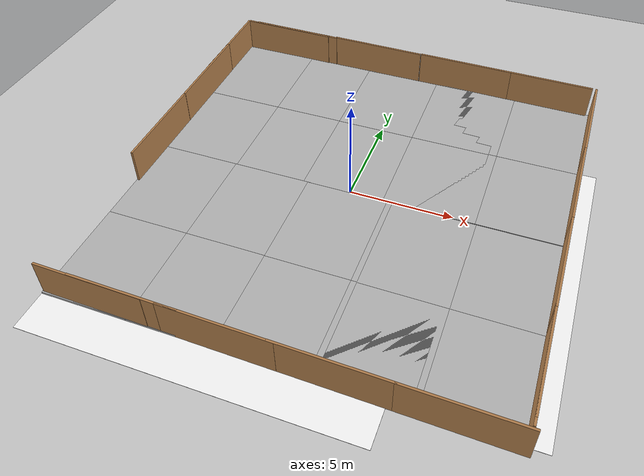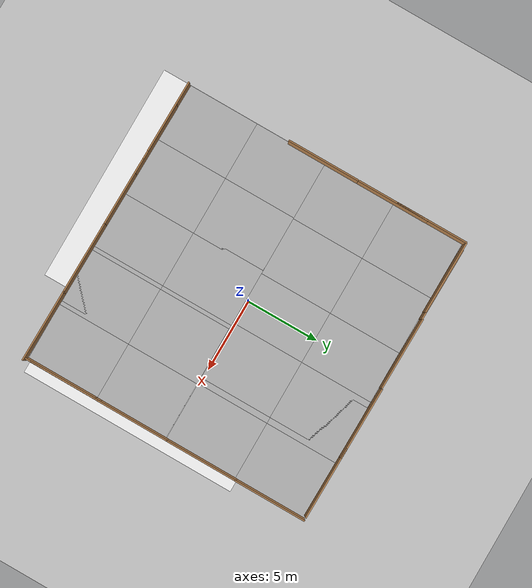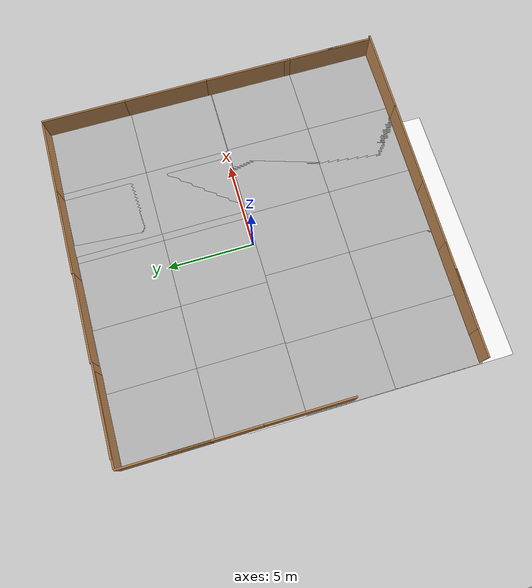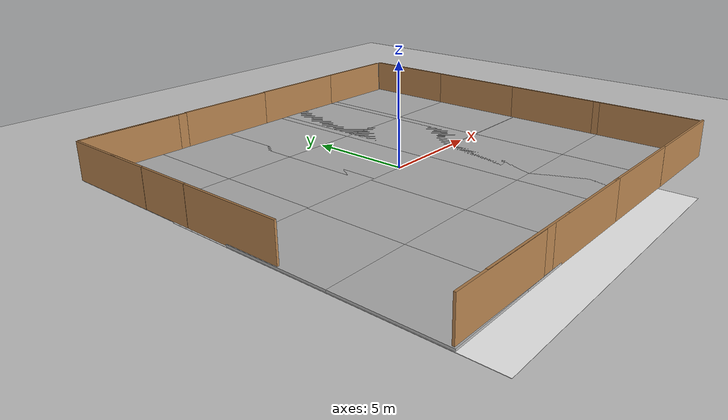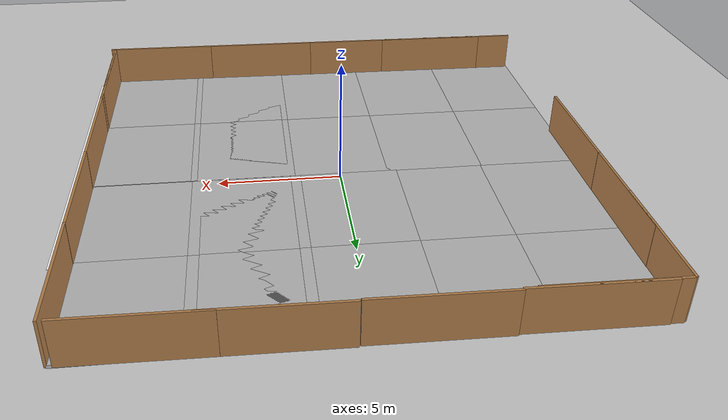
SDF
<sdf version="1.7">
 <world name="default">
  <light name="sun" type="directional">
   <pose>0 0 10 0 -0 0</pose>
   <diffuse>0.8 0.8 0.8 1</diffuse>
   <specular>0.1 0.1 0.1 1</specular>
   <attenuation>
    <range>1000</range>
    <constant>0.9</constant>
    <linear>0.01</linear>
    <quadratic>0.001</quadratic>
   </attenuation>
   <direction>-0.5 0.5 -1</direction>
   <spot><inner_angle>0</inner_angle><outer_angle>0</outer_angle><falloff>0</falloff></spot>
  </light>
  <model name="ground_plane">
   <static>1</static>
   <link name="link">
    <collision name="collision">
     <geometry><plane><normal>0 0 1</normal><size>100 100</size></plane></geometry>
     <surface><friction><ode><mu>100</mu><mu2>50</mu2></ode></friction></surface>
    </collision>
    <visual name="visual">
     <cast_shadows>0</cast_shadows>
     <geometry><plane><normal>0 0 1</normal><size>100 100</size></plane></geometry>
     <material>
      <script><uri>file://media/materials/scripts/gazebo.material</uri><name>Gazebo/Grey</name></script>
     </material>
    </visual>
   </link>
  </model>
  <gravity>0 0 -9.8</gravity>
  <magnetic_field>6e-06 2.3e-05 -4.2e-05</magnetic_field>
  <atmosphere type="adiabatic"/>
  <physics name="default_physics" default="0" type="ode">
   <max_step_size>0.001</max_step_size>
   <real_time_factor>1</real_time_factor>
   <real_time_update_rate>1000</real_time_update_rate>
  </physics>
  <scene><ambient>0.4 0.4 0.4 1</ambient><background>0.7 0.7 0.7 1</background><shadows>1</shadows></scene>
  <spherical_coordinates>
   <surface_model>EARTH_WGS84</surface_model>
   <latitude_deg>0</latitude_deg>
   <longitude_deg>0</longitude_deg>
   <elevation>0</elevation>
   <heading_deg>0</heading_deg>
  </spherical_coordinates>
  <model name="mud_box">
   <static>1</static>
   <link name="link">
    <collision name="collision"><geometry><box><size>8 10 0.2</size></box></geometry></collision>
    <visual name="visual_1">
     <pose>-2 2.5 0 0 -0 0</pose>
     <cast_shadows>0</cast_shadows>
     <geometry><box><size>4 5 0.2</size></box></geometry>
     <material>
      <script>
       <uri>model://mud_box/materials/scripts</uri>
       <uri>model://mud_box/materials/textures</uri>
       <name>vrc/mud</name>
      </script>
     </material>
    </visual>
    <visual name="visual_2">
     <pose>2 2.5 0 0 -0 0</pose>
     <cast_shadows>0</cast_shadows>
     <geometry><box><size>4 5 0.2</size></box></geometry>
     <material>
      <script>
       <uri>model://mud_box/materials/scripts</uri>
       <uri>model://mud_box/materials/textures</uri>
       <name>vrc/mud</name>
      </script>
     </material>
    </visual>
    <visual name="visual_3">
     <pose>2 -2.5 0 0 -0 0</pose>
     <cast_shadows>0</cast_shadows>
     <geometry><box><size>4 5 0.2</size></box></geometry>
     <material>
      <script>
       <uri>model://mud_box/materials/scripts</uri>
       <uri>model://mud_box/materials/textures</uri>
       <name>vrc/mud</name>
      </script>
     </material>
    </visual>
    <visual name="visual_4">
     <pose>-2 -2.5 0 0 -0 0</pose>
     <cast_shadows>0</cast_shadows>
     <geometry><box><size>4 5 0.2</size></box></geometry>
     <material>
      <script>
       <uri>model://mud_box/materials/scripts</uri>
       <uri>model://mud_box/materials/textures</uri>
       <name>vrc/mud</name>
      </script>
     </material>
    </visual>
   </link>
   <pose>-5.98326 -5.12714 0 0 -0 0</pose>
  </model>
  <model name="mud_box_0">
   <static>1</static>
   <link name="link">
    <collision name="collision"><geometry><box><size>8 10 0.2</size></box></geometry></collision>
    <visual name="visual_1">
     <pose>-2 2.5 0 0 -0 0</pose>
     <cast_shadows>0</cast_shadows>
     <geometry><box><size>4 5 0.2</size></box></geometry>
     <material>
      <script>
       <uri>model://mud_box/materials/scripts</uri>
       <uri>model://mud_box/materials/textures</uri>
       <name>vrc/mud</name>
      </script>
     </material>
    </visual>
    <visual name="visual_2">
     <pose>2 2.5 0 0 -0 0</pose>
     <cast_shadows>0</cast_shadows>
     <geometry><box><size>4 5 0.2</size></box></geometry>
     <material>
      <script>
       <uri>model://mud_box/materials/scripts</uri>
       <uri>model://mud_box/materials/textures</uri>
       <name>vrc/mud</name>
      </script>
     </material>
    </visual>
    <visual name="visual_3">
     <pose>2 -2.5 0 0 -0 0</pose>
     <cast_shadows>0</cast_shadows>
     <geometry><box><size>4 5 0.2</size></box></geometry>
     <material>
      <script>
       <uri>model://mud_box/materials/scripts</uri>
       <uri>model://mud_box/materials/textures</uri>
       <name>vrc/mud</name>
      </script>
     </material>
    </visual>
    <visual name="visual_4">
     <pose>-2 -2.5 0 0 -0 0</pose>
     <cast_shadows>0</cast_shadows>
     <geometry><box><size>4 5 0.2</size></box></geometry>
     <material>
      <script>
       <uri>model://mud_box/materials/scripts</uri>
       <uri>model://mud_box/materials/textures</uri>
       <name>vrc/mud</name>
      </script>
     </material>
    </visual>
   </link>
   <pose>1.64664 4.84854 0 0 -0 0</pose>
  </model>
  <model name="mud_box_2">
   <static>1</static>
   <link name="link">
    <collision name="collision"><geometry><box><size>8 10 0.2</size></box></geometry></collision>
    <visual name="visual_1">
     <pose>-2 2.5 0 0 -0 0</pose>
     <cast_shadows>0</cast_shadows>
     <geometry><box><size>4 5 0.2</size></box></geometry>
     <material>
      <script>
       <uri>model://mud_box/materials/scripts</uri>
       <uri>model://mud_box/materials/textures</uri>
       <name>vrc/mud</name>
      </script>
     </material>
    </visual>
    <visual name="visual_2">
     <pose>2 2.5 0 0 -0 0</pose>
     <cast_shadows>0</cast_shadows>
     <geometry><box><size>4 5 0.2</size></box></geometry>
     <material>
      <script>
       <uri>model://mud_box/materials/scripts</uri>
       <uri>model://mud_box/materials/textures</uri>
       <name>vrc/mud</name>
      </script>
     </material>
    </visual>
    <visual name="visual_3">
     <pose>2 -2.5 0 0 -0 0</pose>
     <cast_shadows>0</cast_shadows>
     <geometry><box><size>4 5 0.2</size></box></geometry>
     <material>
      <script>
       <uri>model://mud_box/materials/scripts</uri>
       <uri>model://mud_box/materials/textures</uri>
       <name>vrc/mud</name>
      </script>
     </material>
    </visual>
    <visual name="visual_4">
     <pose>-2 -2.5 0 0 -0 0</pose>
     <cast_shadows>0</cast_shadows>
     <geometry><box><size>4 5 0.2</size></box></geometry>
     <material>
      <script>
       <uri>model://mud_box/materials/scripts</uri>
       <uri>model://mud_box/materials/textures</uri>
       <name>vrc/mud</name>
      </script>
     </material>
    </visual>
   </link>
   <pose>1.85975 -5.14192 0 0 -0 0</pose>
  </model>
  <model name="mud_box_0_clone">
   <static>1</static>
   <link name="link">
    <collision name="collision"><geometry><box><size>8 10 0.2</size></box></geometry></collision>
    <visual name="visual_1">
     <pose>-2 2.5 0 0 -0 0</pose>
     <cast_shadows>0</cast_shadows>
     <geometry><box><size>4 5 0.2</size></box></geometry>
     <material>
      <script>
       <uri>model://mud_box/materials/scripts</uri>
       <uri>model://mud_box/materials/textures</uri>
       <name>vrc/mud</name>
      </script>
     </material>
    </visual>
    <visual name="visual_2">
     <pose>2 2.5 0 0 -0 0</pose>
     <cast_shadows>0</cast_shadows>
     <geometry><box><size>4 5 0.2</size></box></geometry>
     <material>
      <script>
       <uri>model://mud_box/materials/scripts</uri>
       <uri>model://mud_box/materials/textures</uri>
       <name>vrc/mud</name>
      </script>
     </material>
    </visual>
    <visual name="visual_3">
     <pose>2 -2.5 0 0 -0 0</pose>
     <cast_shadows>0</cast_shadows>
     <geometry><box><size>4 5 0.2</size></box></geometry>
     <material>
      <script>
       <uri>model://mud_box/materials/scripts</uri>
       <uri>model://mud_box/materials/textures</uri>
       <name>vrc/mud</name>
      </script>
     </material>
    </visual>
    <visual name="visual_4">
     <pose>-2 -2.5 0 0 -0 0</pose>
     <cast_shadows>0</cast_shadows>
     <geometry><box><size>4 5 0.2</size></box></geometry>
     <material>
      <script>
       <uri>model://mud_box/materials/scripts</uri>
       <uri>model://mud_box/materials/textures</uri>
       <name>vrc/mud</name>
      </script>
     </material>
    </visual>
   </link>
   <pose>6.12315 -5.16667 0 0 -0 0</pose>
  </model>
  <model name="mud_box_0_clone_clone_0">
   <static>1</static>
   <link name="link">
    <collision name="collision"><geometry><box><size>8 10 0.2</size></box></geometry></collision>
    <visual name="visual_1">
     <pose>-2 2.5 0 0 -0 0</pose>
     <cast_shadows>0</cast_shadows>
     <geometry><box><size>4 5 0.2</size></box></geometry>
     <material>
      <script>
       <uri>model://mud_box/materials/scripts</uri>
       <uri>model://mud_box/materials/textures</uri>
       <name>vrc/mud</name>
      </script>
     </material>
    </visual>
    <visual name="visual_2">
     <pose>2 2.5 0 0 -0 0</pose>
     <cast_shadows>0</cast_shadows>
     <geometry><box><size>4 5 0.2</size></box></geometry>
     <material>
      <script>
       <uri>model://mud_box/materials/scripts</uri>
       <uri>model://mud_box/materials/textures</uri>
       <name>vrc/mud</name>
      </script>
     </material>
    </visual>
    <visual name="visual_3">
     <pose>2 -2.5 0 0 -0 0</pose>
     <cast_shadows>0</cast_shadows>
     <geometry><box><size>4 5 0.2</size></box></geometry>
     <material>
      <script>
       <uri>model://mud_box/materials/scripts</uri>
       <uri>model://mud_box/materials/textures</uri>
       <name>vrc/mud</name>
      </script>
     </material>
    </visual>
    <visual name="visual_4">
     <pose>-2 -2.5 0 0 -0 0</pose>
     <cast_shadows>0</cast_shadows>
     <geometry><box><size>4 5 0.2</size></box></geometry>
     <material>
      <script>
       <uri>model://mud_box/materials/scripts</uri>
       <uri>model://mud_box/materials/textures</uri>
       <name>vrc/mud</name>
      </script>
     </material>
    </visual>
   </link>
   <pose>6.05664 4.87182 0 0 -0 0</pose>
  </model>
  <model name="mud_box_0_clone_clone_2">
   <static>1</static>
   <link name="link">
    <collision name="collision"><geometry><box><size>8 10 0.2</size></box></geometry></collision>
    <visual name="visual_1">
     <pose>-2 2.5 0 0 -0 0</pose>
     <cast_shadows>0</cast_shadows>
     <geometry><box><size>4 5 0.2</size></box></geometry>
     <material>
      <script>
       <uri>model://mud_box/materials/scripts</uri>
       <uri>model://mud_box/materials/textures</uri>
       <name>vrc/mud</name>
      </script>
     </material>
    </visual>
    <visual name="visual_2">
     <pose>2 2.5 0 0 -0 0</pose>
     <cast_shadows>0</cast_shadows>
     <geometry><box><size>4 5 0.2</size></box></geometry>
     <material>
      <script>
       <uri>model://mud_box/materials/scripts</uri>
       <uri>model://mud_box/materials/textures</uri>
       <name>vrc/mud</name>
      </script>
     </material>
    </visual>
    <visual name="visual_3">
     <pose>2 -2.5 0 0 -0 0</pose>
     <cast_shadows>0</cast_shadows>
     <geometry><box><size>4 5 0.2</size></box></geometry>
     <material>
      <script>
       <uri>model://mud_box/materials/scripts</uri>
       <uri>model://mud_box/materials/textures</uri>
       <name>vrc/mud</name>
      </script>
     </material>
    </visual>
    <visual name="visual_4">
     <pose>-2 -2.5 0 0 -0 0</pose>
     <cast_shadows>0</cast_shadows>
     <geometry><box><size>4 5 0.2</size></box></geometry>
     <material>
      <script>
       <uri>model://mud_box/materials/scripts</uri>
       <uri>model://mud_box/materials/textures</uri>
       <name>vrc/mud</name>
      </script>
     </material>
    </visual>
   </link>
   <pose>-5.93085 4.86118 0 0 -0 0</pose>
  </model>
  <model name="fence">
   <static>1</static>
   <link name="link">
    <pose>0 0 0.915 0 -0 0</pose>
    <collision name="collision"><geometry><box><size>0.1 5 1.83</size></box></geometry></collision>
    <visual name="visual">
     <cast_shadows>0</cast_shadows>
     <geometry><box><size>0.1 5 1.83</size></box></geometry>
     <material>
      <script>
       <uri>https://fuel.gazebosim.org/1.0/athackst/models/fence/2/files/materials/scripts</uri>
       <uri>https://fuel.gazebosim.org/1.0/athackst/models/fence/2/files/materials/textures</uri>
       <name>Fence/WoodBoarding</name>
      </script>
     </material>
    </visual>
   </link>
   <pose>-9.89372 -0.30785 0 0 -0 0</pose>
  </model>
  <model name="fence_clone">
   <static>1</static>
   <link name="link">
    <pose>0 0 0.915 0 -0 0</pose>
    <collision name="collision"><geometry><box><size>0.1 5 1.83</size></box></geometry></collision>
    <visual name="visual">
     <cast_shadows>0</cast_shadows>
     <geometry><box><size>0.1 5 1.83</size></box></geometry>
     <material>
      <script>
       <uri>https://fuel.gazebosim.org/1.0/athackst/models/fence/2/files/materials/scripts</uri>
       <uri>https://fuel.gazebosim.org/1.0/athackst/models/fence/2/files/materials/textures</uri>
       <name>Fence/WoodBoarding</name>
      </script>
     </material>
    </visual>
   </link>
   <pose>-9.89568 4.70582 0 0 -0 0</pose>
  </model>
  <model name="fence_clone_0">
   <static>1</static>
   <link name="link">
    <pose>0 0 0.915 0 -0 0</pose>
    <collision name="collision"><geometry><box><size>0.1 5 1.83</size></box></geometry></collision>
    <visual name="visual">
     <cast_shadows>0</cast_shadows>
     <geometry><box><size>0.1 5 1.83</size></box></geometry>
     <material>
      <script>
       <uri>https://fuel.gazebosim.org/1.0/athackst/models/fence/2/files/materials/scripts</uri>
       <uri>https://fuel.gazebosim.org/1.0/athackst/models/fence/2/files/materials/textures</uri>
       <name>Fence/WoodBoarding</name>
      </script>
     </material>
    </visual>
   </link>
   <pose>-9.9057 7.46242 0 0 -0 0</pose>
  </model>
  <model name="fence_clone_1">
   <static>1</static>
   <link name="link">
    <pose>0 0 0.915 0 -0 0</pose>
    <collision name="collision"><geometry><box><size>0.1 5 1.83</size></box></geometry></collision>
    <visual name="visual">
     <cast_shadows>0</cast_shadows>
     <geometry><box><size>0.1 5 1.83</size></box></geometry>
     <material>
      <script>
       <uri>https://fuel.gazebosim.org/1.0/athackst/models/fence/2/files/materials/scripts</uri>
       <uri>https://fuel.gazebosim.org/1.0/athackst/models/fence/2/files/materials/textures</uri>
       <name>Fence/WoodBoarding</name>
      </script>
     </material>
    </visual>
   </link>
   <pose>10.0636 7.36821 0 0 -0 0</pose>
  </model>
  <model name="fence_clone_2">
   <static>1</static>
   <link name="link">
    <pose>0 0 0.915 0 -0 0</pose>
    <collision name="collision"><geometry><box><size>0.1 5 1.83</size></box></geometry></collision>
    <visual name="visual">
     <cast_shadows>0</cast_shadows>
     <geometry><box><size>0.1 5 1.83</size></box></geometry>
     <material>
      <script>
       <uri>https://fuel.gazebosim.org/1.0/athackst/models/fence/2/files/materials/scripts</uri>
       <uri>https://fuel.gazebosim.org/1.0/athackst/models/fence/2/files/materials/textures</uri>
       <name>Fence/WoodBoarding</name>
      </script>
     </material>
    </visual>
   </link>
   <pose>10.056 2.45698 0 0 -0 0</pose>
  </model>
  <model name="fence_clone_3">
   <static>1</static>
   <link name="link">
    <pose>0 0 0.915 0 -0 0</pose>
    <collision name="collision"><geometry><box><size>0.1 5 1.83</size></box></geometry></collision>
    <visual name="visual">
     <cast_shadows>0</cast_shadows>
     <geometry><box><size>0.1 5 1.83</size></box></geometry>
     <material>
      <script>
       <uri>https://fuel.gazebosim.org/1.0/athackst/models/fence/2/files/materials/scripts</uri>
       <uri>https://fuel.gazebosim.org/1.0/athackst/models/fence/2/files/materials/textures</uri>
       <name>Fence/WoodBoarding</name>
      </script>
     </material>
    </visual>
   </link>
   <pose>10.05 -2.48927 0 0 -0 0</pose>
  </model>
  <model name="fence_clone_4">
   <static>1</static>
   <link name="link">
    <pose>0 0 0.915 0 -0 0</pose>
    <collision name="collision"><geometry><box><size>0.1 5 1.83</size></box></geometry></collision>
    <visual name="visual">
     <cast_shadows>0</cast_shadows>
     <geometry><box><size>0.1 5 1.83</size></box></geometry>
     <material>
      <script>
       <uri>https://fuel.gazebosim.org/1.0/athackst/models/fence/2/files/materials/scripts</uri>
       <uri>https://fuel.gazebosim.org/1.0/athackst/models/fence/2/files/materials/textures</uri>
       <name>Fence/WoodBoarding</name>
      </script>
     </material>
    </visual>
   </link>
   <pose>10.0459 -7.31564 0 0 -0 0</pose>
  </model>
  <model name="fence_clone_5">
   <static>1</static>
   <link name="link">
    <pose>0 0 0.915 0 -0 0</pose>
    <collision name="collision"><geometry><box><size>0.1 5 1.83</size></box></geometry></collision>
    <visual name="visual">
     <cast_shadows>0</cast_shadows>
     <geometry><box><size>0.1 5 1.83</size></box></geometry>
     <material>
      <script>
       <uri>https://fuel.gazebosim.org/1.0/athackst/models/fence/2/files/materials/scripts</uri>
       <uri>https://fuel.gazebosim.org/1.0/athackst/models/fence/2/files/materials/textures</uri>
       <name>Fence/WoodBoarding</name>
      </script>
     </material>
    </visual>
   </link>
   <pose>10.04 -7.666 0 0 -0 0</pose>
  </model>
  <model name="fence_clone_6">
   <static>1</static>
   <link name="link">
    <pose>0 0 0.915 0 -0 0</pose>
    <collision name="collision"><geometry><box><size>0.1 5 1.83</size></box></geometry></collision>
    <visual name="visual">
     <cast_shadows>0</cast_shadows>
     <geometry><box><size>0.1 5 1.83</size></box></geometry>
     <material>
      <script>
       <uri>https://fuel.gazebosim.org/1.0/athackst/models/fence/2/files/materials/scripts</uri>
       <uri>https://fuel.gazebosim.org/1.0/athackst/models/fence/2/files/materials/textures</uri>
       <name>Fence/WoodBoarding</name>
      </script>
     </material>
    </visual>
   </link>
   <pose>7.74359 -10.2293 -0 0 0 -1.58413</pose>
  </model>
  <model name="fence_clone_6_clone">
   <static>1</static>
   <link name="link">
    <pose>0 0 0.915 0 -0 0</pose>
    <collision name="collision"><geometry><box><size>0.1 5 1.83</size></box></geometry></collision>
    <visual name="visual">
     <cast_shadows>0</cast_shadows>
     <geometry><box><size>0.1 5 1.83</size></box></geometry>
     <material>
      <script>
       <uri>https://fuel.gazebosim.org/1.0/athackst/models/fence/2/files/materials/scripts</uri>
       <uri>https://fuel.gazebosim.org/1.0/athackst/models/fence/2/files/materials/textures</uri>
       <name>Fence/WoodBoarding</name>
      </script>
     </material>
    </visual>
   </link>
   <pose>2.8432 -10.1621 -0 0 0 -1.58413</pose>
  </model>
  <model name="fence_clone_6_clone_0">
   <static>1</static>
   <link name="link">
    <pose>0 0 0.915 0 -0 0</pose>
    <collision name="collision"><geometry><box><size>0.1 5 1.83</size></box></geometry></collision>
    <visual name="visual">
     <cast_shadows>0</cast_shadows>
     <geometry><box><size>0.1 5 1.83</size></box></geometry>
     <material>
      <script>
       <uri>https://fuel.gazebosim.org/1.0/athackst/models/fence/2/files/materials/scripts</uri>
       <uri>https://fuel.gazebosim.org/1.0/athackst/models/fence/2/files/materials/textures</uri>
       <name>Fence/WoodBoarding</name>
      </script>
     </material>
    </visual>
   </link>
   <pose>-1.83838 -10.102 -0 0 0 -1.58413</pose>
  </model>
  <model name="fence_clone_6_clone_1">
   <static>1</static>
   <link name="link">
    <pose>0 0 0.915 0 -0 0</pose>
    <collision name="collision"><geometry><box><size>0.1 5 1.83</size></box></geometry></collision>
    <visual name="visual">
     <cast_shadows>0</cast_shadows>
     <geometry><box><size>0.1 5 1.83</size></box></geometry>
     <material>
      <script>
       <uri>https://fuel.gazebosim.org/1.0/athackst/models/fence/2/files/materials/scripts</uri>
       <uri>https://fuel.gazebosim.org/1.0/athackst/models/fence/2/files/materials/textures</uri>
       <name>Fence/WoodBoarding</name>
      </script>
     </material>
    </visual>
   </link>
   <pose>-5.84292 -10.048 -0 0 0 -1.58413</pose>
  </model>
  <model name="fence_clone_6_clone_2">
   <static>1</static>
   <link name="link">
    <pose>0 0 0.915 0 -0 0</pose>
    <collision name="collision"><geometry><box><size>0.1 5 1.83</size></box></geometry></collision>
    <visual name="visual">
     <cast_shadows>0</cast_shadows>
     <geometry><box><size>0.1 5 1.83</size></box></geometry>
     <material>
      <script>
       <uri>https://fuel.gazebosim.org/1.0/athackst/models/fence/2/files/materials/scripts</uri>
       <uri>https://fuel.gazebosim.org/1.0/athackst/models/fence/2/files/materials/textures</uri>
       <name>Fence/WoodBoarding</name>
      </script>
     </material>
    </visual>
   </link>
   <pose>-7.42735 -10.0411 -0 0 0 -1.58413</pose>
  </model>
  <model name="fence_clone_6_clone_3">
   <static>1</static>
   <link name="link">
    <pose>0 0 0.915 0 -0 0</pose>
    <collision name="collision"><geometry><box><size>0.1 5 1.83</size></box></geometry></collision>
    <visual name="visual">
     <cast_shadows>0</cast_shadows>
     <geometry><box><size>0.1 5 1.83</size></box></geometry>
     <material>
      <script>
       <uri>https://fuel.gazebosim.org/1.0/athackst/models/fence/2/files/materials/scripts</uri>
       <uri>https://fuel.gazebosim.org/1.0/athackst/models/fence/2/files/materials/textures</uri>
       <name>Fence/WoodBoarding</name>
      </script>
     </material>
    </visual>
   </link>
   <pose>7.37253 9.86478 -0 0 0 -1.58413</pose>
  </model>
  <model name="fence_clone_6_clone_4">
   <static>1</static>
   <link name="link">
    <pose>0 0 0.915 0 -0 0</pose>
    <collision name="collision"><geometry><box><size>0.1 5 1.83</size></box></geometry></collision>
    <visual name="visual">
     <cast_shadows>0</cast_shadows>
     <geometry><box><size>0.1 5 1.83</size></box></geometry>
     <material>
      <script>
       <uri>https://fuel.gazebosim.org/1.0/athackst/models/fence/2/files/materials/scripts</uri>
       <uri>https://fuel.gazebosim.org/1.0/athackst/models/fence/2/files/materials/textures</uri>
       <name>Fence/WoodBoarding</name>
      </script>
     </material>
    </visual>
   </link>
   <pose>3.0991 9.9186 -0 0 0 -1.58413</pose>
  </model>
  <model name="fence_clone_6_clone_5">
   <static>1</static>
   <link name="link">
    <pose>0 0 0.915 0 -0 0</pose>
    <collision name="collision"><geometry><box><size>0.1 5 1.83</size></box></geometry></collision>
    <visual name="visual">
     <cast_shadows>0</cast_shadows>
     <geometry><box><size>0.1 5 1.83</size></box></geometry>
     <material>
      <script>
       <uri>https://fuel.gazebosim.org/1.0/athackst/models/fence/2/files/materials/scripts</uri>
       <uri>https://fuel.gazebosim.org/1.0/athackst/models/fence/2/files/materials/textures</uri>
       <name>Fence/WoodBoarding</name>
      </script>
     </material>
    </visual>
   </link>
   <pose>-1.92904 9.94278 -0 0 0 -1.58413</pose>
  </model>
  <model name="fence_clone_6_clone_6">
   <static>1</static>
   <link name="link">
    <pose>0 0 0.915 0 -0 0</pose>
    <collision name="collision"><geometry><box><size>0.1 5 1.83</size></box></geometry></collision>
    <visual name="visual">
     <cast_shadows>0</cast_shadows>
     <geometry><box><size>0.1 5 1.83</size></box></geometry>
     <material>
      <script>
       <uri>https://fuel.gazebosim.org/1.0/athackst/models/fence/2/files/materials/scripts</uri>
       <uri>https://fuel.gazebosim.org/1.0/athackst/models/fence/2/files/materials/textures</uri>
       <name>Fence/WoodBoarding</name>
      </script>
     </material>
    </visual>
   </link>
   <pose>-6.89076 9.95644 -0 0 0 -1.58413</pose>
  </model>
  <model name="fence_clone_6_clone_7">
   <static>1</static>
   <link name="link">
    <pose>0 0 0.915 0 -0 0</pose>
    <collision name="collision"><geometry><box><size>0.1 5 1.83</size></box></geometry></collision>
    <visual name="visual">
     <cast_shadows>0</cast_shadows>
     <geometry><box><size>0.1 5 1.83</size></box></geometry>
     <material>
      <script>
       <uri>https://fuel.gazebosim.org/1.0/athackst/models/fence/2/files/materials/scripts</uri>
       <uri>https://fuel.gazebosim.org/1.0/athackst/models/fence/2/files/materials/textures</uri>
       <name>Fence/WoodBoarding</name>
      </script>
     </material>
    </visual>
   </link>
   <pose>-7.37701 9.926 -0 0 0 -1.58413</pose>
  </model>
  <model name="grasspatch">
   <static>1</static>
   <link name="link">
    <collision name="collision">
     <geometry><plane><normal>0 0 1</normal><size>15 15</size></plane></geometry>
     <surface><friction><ode><mu>0.5</mu><mu2>0.5</mu2></ode></friction></surface>
    </collision>
    <visual name="visual_s10">
     <cast_shadows>0</cast_shadows>
     <geometry><plane><normal>0 0 1</normal><size>15 15</size></plane></geometry>
     <material>
      <diffuse>1 1 1 1</diffuse>
      <specular>1 1 1 1</specular>
      <pbr>
       <metal>
        <albedo_map>materials/textures/grass_dry.png</albedo_map>
        <normal_map>materials/textures/grass_dry.png</normal_map>
       </metal>
      </pbr>
     </material>
    </visual>
   </link>
   <pose>-2.50356 -4.43422 0 0 -0 0</pose>
  </model>
  <model name="grasspatch_0">
   <static>1</static>
   <link name="link">
    <collision name="collision">
     <geometry><plane><normal>0 0 1</normal><size>15 15</size></plane></geometry>
     <surface><friction><ode><mu>0.5</mu><mu2>0.5</mu2></ode></friction></surface>
    </collision>
    <visual name="visual_s10">
     <cast_shadows>0</cast_shadows>
     <geometry><plane><normal>0 0 1</normal><size>15 15</size></plane></geometry>
     <material>
      <diffuse>1 1 1 1</diffuse>
      <specular>1 1 1 1</specular>
      <pbr>
       <metal>
        <albedo_map>materials/textures/grass_dry.png</albedo_map>
        <normal_map>materials/textures/grass_dry.png</normal_map>
       </metal>
      </pbr>
     </material>
    </visual>
   </link>
   <pose>3.43185 -2.47111 0 0 -0 0</pose>
  </model>
 </world>
</sdf>
